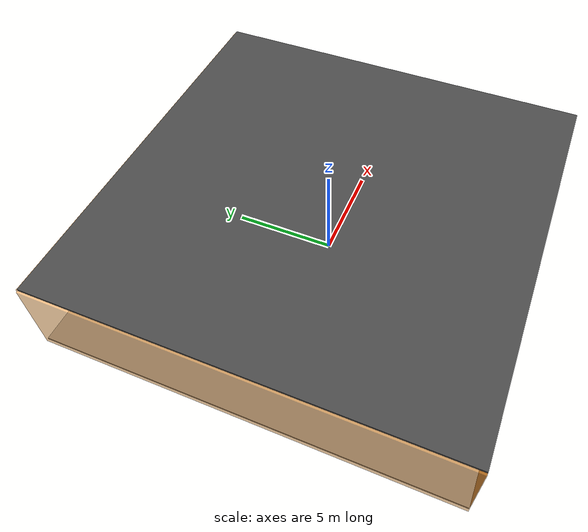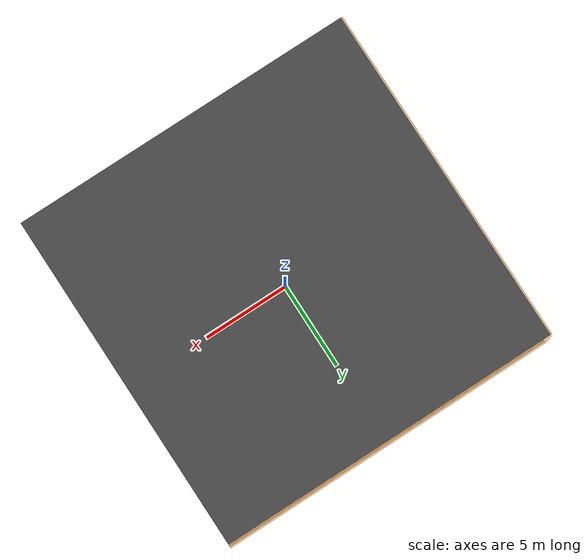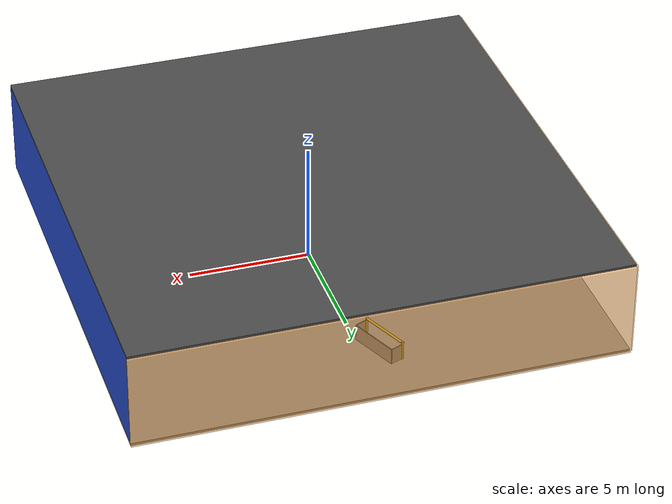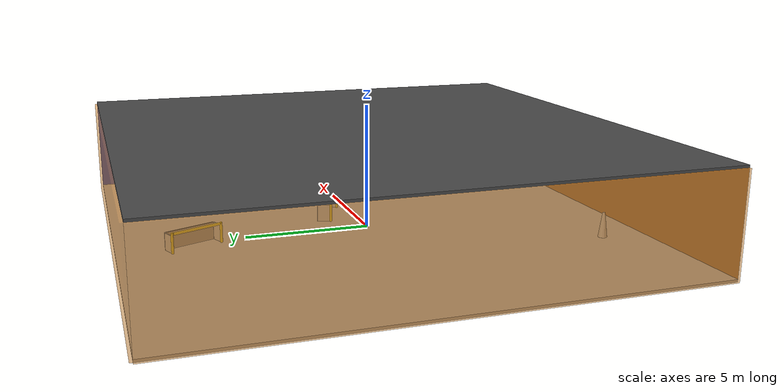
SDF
<sdf version="1.4">
 <world name="default">
  <physics type="ode">
   <max_step_size>0.001</max_step_size>
   <real_time_factor>1</real_time_factor>
   <real_time_update_rate>1000</real_time_update_rate>
   <gravity>0 0 -9.8</gravity>
  </physics>
  <scene><ambient>0.4 0.4 0.4 1</ambient><background>0.7 0.7 0.7 1</background><shadows>1</shadows></scene>
  <model name="Surrounding">
   <static>1</static>
   <link name="Ceiling">
    <collision name="Ceiling_Collision"><geometry><box><size>20 20 0.1</size></box></geometry></collision>
    <visual name="Ceiling_Visual">
     <geometry><box><size>20 20 0.1</size></box></geometry>
     <material>
      <script><uri>file://media/materials/scripts/gazebo.material</uri><name>Gazebo/Road</name></script>
     </material>
    </visual>
    <pose>0 0 4.05 0 0 0</pose>
   </link>
   <link name="Wall_South">
    <collision name="Wall_South_Collision">
     <geometry><box><size>20 0 4</size></box></geometry>
     <pose>0 0 2 0 -0 0</pose>
    </collision>
    <visual name="Wall_South_Visual">
     <pose>0 0 2 0 -0 0</pose>
     <geometry><box><size>20 0 4</size></box></geometry>
     <material>
      <script><uri>file://media/materials/scripts/gazebo.material</uri><name>Gazebo/WoodPallet</name></script>
     </material>
    </visual>
    <velocity_decay><linear>0</linear><angular>0</angular></velocity_decay>
    <pose>0 -10 0 0 -0 0</pose>
   </link>
   <link name="Wall_East">
    <collision name="Wall_21_Collision">
     <geometry><box><size>20 0 4</size></box></geometry>
     <pose>0 0 2 0 -0 0</pose>
    </collision>
    <visual name="Wall_21_Visual">
     <pose>0 0 2 0 -0 0</pose>
     <geometry><box><size>20 0 4</size></box></geometry>
     <material>
      <script><uri>file://media/materials/scripts/gazebo.material</uri><name>Gazebo/Blue</name></script>
     </material>
    </visual>
    <velocity_decay><linear>0</linear><angular>0</angular></velocity_decay>
    <pose>10 0 0 0 -0 1.5708</pose>
   </link>
   <link name="Wall_North">
    <collision name="Wall_22_Collision">
     <geometry><box><size>20 0.2 4</size></box></geometry>
     <pose>0 0 2 0 -0 0</pose>
    </collision>
    <visual name="Wall_22_Visual">
     <pose>0 0 2 0 -0 0</pose>
     <geometry><box><size>20 0.2 4</size></box></geometry>
     <material>
      <script>
       <uri>file://media/materials/scripts/gazebo.material</uri>
       <name>Gazebo/OrangeTransparent</name>
      </script>
     </material>
    </visual>
    <velocity_decay><linear>0</linear><angular>0</angular></velocity_decay>
    <pose>0 10 0 0 -0 0</pose>
   </link>
   <link name="Wall_West">
    <collision name="Wall_23_Collision">
     <geometry><box><size>20 0.2 4</size></box></geometry>
     <pose>0 0 2 0 -0 0</pose>
    </collision>
    <visual name="Wall_23_Visual">
     <pose>0 0 2 0 -0 0</pose>
     <geometry><box><size>20 0.2 4</size></box></geometry>
     <material>
      <script>
       <uri>file://media/materials/scripts/gazebo.material</uri>
       <name>Gazebo/OrangeTransparent</name>
      </script>
     </material>
    </visual>
    <velocity_decay><linear>0</linear><angular>0</angular></velocity_decay>
    <pose>-10 0 0 0 0 -1.5708</pose>
   </link>
   <link name="Ground_link">
    <collision name="collision">
     <pose>0 0 .05 0 -0 0</pose>
     <geometry><box><size>20 20 0.1</size></box></geometry>
    </collision>
    <visual name="visual">
     <pose>0 0 .05 0 -0 0</pose>
     <geometry><box><size>20 20 0.1</size></box></geometry>
     <material>
      <script><uri>file://media/materials/scripts/gazebo.material</uri><name>Gazebo/LightOff</name></script>
     </material>
    </visual>
   </link>
   <static>1</static>
  </model>
  <spherical_coordinates>
   <surface_model>EARTH_WGS84</surface_model>
   <latitude_deg>0</latitude_deg>
   <longitude_deg>0</longitude_deg>
   <elevation>0</elevation>
   <heading_deg>0</heading_deg>
  </spherical_coordinates>
  <light name="lightball_0" type="diffuse">
   <diffuse>0.8 0.8 0.8 1</diffuse>
   <specular>0.2 0.2 0.2 1</specular>
   <attenuation>
    <range>100</range>
    <constant>0.7</constant>
    <linear>0.01</linear>
    <quadratic>0.001</quadratic>
   </attenuation>
   <direction>-0.5 0.1 -0.9</direction>
   <pose>-6.57161211981 -5.16757775023 0.548988955993 0 0 0</pose>
  </light>
  <light name="lightball_1" type="diffuse">
   <diffuse>0.8 0.8 0.8 1</diffuse>
   <specular>0.2 0.2 0.2 1</specular>
   <attenuation>
    <range>100</range>
    <constant>0.7</constant>
    <linear>0.01</linear>
    <quadratic>0.001</quadratic>
   </attenuation>
   <direction>-0.5 0.1 -0.9</direction>
   <pose>6.63430705047 5.64984219134 2.20633146486 0 0 0</pose>
  </light>
  <light name="lightball_2" type="diffuse">
   <diffuse>0.8 0.8 0.8 1</diffuse>
   <specular>0.2 0.2 0.2 1</specular>
   <attenuation>
    <range>100</range>
    <constant>0.7</constant>
    <linear>0.01</linear>
    <quadratic>0.001</quadratic>
   </attenuation>
   <direction>-0.5 0.1 -0.9</direction>
   <pose>5.35909191136 7.92904218091 1.44287566967 0 0 0</pose>
  </light>
  <light name="lightball_3" type="diffuse">
   <diffuse>0.8 0.8 0.8 1</diffuse>
   <specular>0.2 0.2 0.2 1</specular>
   <attenuation>
    <range>100</range>
    <constant>0.7</constant>
    <linear>0.01</linear>
    <quadratic>0.001</quadratic>
   </attenuation>
   <direction>-0.5 0.1 -0.9</direction>
   <pose>-4.92742104635 6.16172764755 3.62825854523 0 0 0</pose>
  </light>
  <light name="lightball_4" type="diffuse">
   <diffuse>0.8 0.8 0.8 1</diffuse>
   <specular>0.2 0.2 0.2 1</specular>
   <attenuation>
    <range>100</range>
    <constant>0.7</constant>
    <linear>0.01</linear>
    <quadratic>0.001</quadratic>
   </attenuation>
   <direction>-0.5 0.1 -0.9</direction>
   <pose>-4.48273944628 -9.39004649531 1.7695632513 0 0 0</pose>
  </light>
  <light name="lightball_5" type="diffuse">
   <diffuse>0.8 0.8 0.8 1</diffuse>
   <specular>0.2 0.2 0.2 1</specular>
   <attenuation>
    <range>100</range>
    <constant>0.7</constant>
    <linear>0.01</linear>
    <quadratic>0.001</quadratic>
   </attenuation>
   <direction>-0.5 0.1 -0.9</direction>
   <pose>0.24565223462 6.58986375392 2.59800653709 0 0 0</pose>
  </light>
  <light name="lightball_6" type="diffuse">
   <diffuse>0.8 0.8 0.8 1</diffuse>
   <specular>0.2 0.2 0.2 1</specular>
   <attenuation>
    <range>100</range>
    <constant>0.7</constant>
    <linear>0.01</linear>
    <quadratic>0.001</quadratic>
   </attenuation>
   <direction>-0.5 0.1 -0.9</direction>
   <pose>9.56084082675 9.09197911273 1.10038784203 0 0 0</pose>
  </light>
  <light name="lightball_7" type="diffuse">
   <diffuse>0.8 0.8 0.8 1</diffuse>
   <specular>0.2 0.2 0.2 1</specular>
   <attenuation>
    <range>100</range>
    <constant>0.7</constant>
    <linear>0.01</linear>
    <quadratic>0.001</quadratic>
   </attenuation>
   <direction>-0.5 0.1 -0.9</direction>
   <pose>-3.56804501197 -7.91528628657 1.39549470088 0 0 0</pose>
  </light>
  <light name="lightball_8" type="diffuse">
   <diffuse>0.8 0.8 0.8 1</diffuse>
   <specular>0.2 0.2 0.2 1</specular>
   <attenuation>
    <range>100</range>
    <constant>0.7</constant>
    <linear>0.01</linear>
    <quadratic>0.001</quadratic>
   </attenuation>
   <direction>-0.5 0.1 -0.9</direction>
   <pose>-5.47381555349 7.87450773163 2.46329301392 0 0 0</pose>
  </light>
  <light name="lightball_9" type="diffuse">
   <diffuse>0.8 0.8 0.8 1</diffuse>
   <specular>0.2 0.2 0.2 1</specular>
   <attenuation>
    <range>100</range>
    <constant>0.7</constant>
    <linear>0.01</linear>
    <quadratic>0.001</quadratic>
   </attenuation>
   <direction>-0.5 0.1 -0.9</direction>
   <pose>7.72560159537 -8.69562322282 0.816211338495 0 0 0</pose>
  </light>
  <light name="lightball_10" type="diffuse">
   <diffuse>0.8 0.8 0.8 1</diffuse>
   <specular>0.2 0.2 0.2 1</specular>
   <attenuation>
    <range>100</range>
    <constant>0.7</constant>
    <linear>0.01</linear>
    <quadratic>0.001</quadratic>
   </attenuation>
   <direction>-0.5 0.1 -0.9</direction>
   <pose>5.07191684493 -3.00619087126 3.05069588451 0 0 0</pose>
  </light>
  <light name="lightball_11" type="diffuse">
   <diffuse>0.8 0.8 0.8 1</diffuse>
   <specular>0.2 0.2 0.2 1</specular>
   <attenuation>
    <range>100</range>
    <constant>0.7</constant>
    <linear>0.01</linear>
    <quadratic>0.001</quadratic>
   </attenuation>
   <direction>-0.5 0.1 -0.9</direction>
   <pose>5.65653210908 -1.62140975612 2.21111481797 0 0 0</pose>
  </light>
  <light name="lightball_12" type="diffuse">
   <diffuse>0.8 0.8 0.8 1</diffuse>
   <specular>0.2 0.2 0.2 1</specular>
   <attenuation>
    <range>100</range>
    <constant>0.7</constant>
    <linear>0.01</linear>
    <quadratic>0.001</quadratic>
   </attenuation>
   <direction>-0.5 0.1 -0.9</direction>
   <pose>2.66013136101 4.45809659062 1.74797948528 0 0 0</pose>
  </light>
  <include>
   <uri>model://construction_cone</uri>
   <pose>-4.44733932365 -8.22712408409 0 0 0 3.02055741793</pose>
  </include>
  <include>
   <uri>model://robocup_3Dsim_goal</uri>
   <pose>-0.938735085189 6.99685189038 0 0 0 0.400830573489</pose>
  </include>
  <include>
   <uri>model://robocup_3Dsim_goal</uri>
   <pose>1.81325048484 0.882519675752 0 0 0 1.17412064039</pose>
  </include>
 </world>
</sdf>

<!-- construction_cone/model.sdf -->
<sdf version="1.5">
  <model name="Construction Cone">
    <link name="link">
      <collision name="collision">
        <geometry>
          <mesh>
            <scale>10 10 10</scale>
            <uri>file://isr-testbed/construction_cone/meshes/construction_cone.dae</uri>
          </mesh>
        </geometry>
      </collision>
      <visual name="visual">
        <geometry>
          <mesh>
            <scale>10 10 10</scale>
            <uri>file://isr-testbed/construction_cone/meshes/construction_cone.dae</uri>
          </mesh>
        </geometry>
      </visual>
    </link>
  </model>
</sdf>

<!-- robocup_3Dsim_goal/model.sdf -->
<sdf version="1.5">
  <model name="robocup_3d_goal">
    <static>true</static>
    <link name="left_post">
      <pose>0 1.05 0.45 0 0 0</pose>
      <collision name="collision">
        <geometry>
          <cylinder>
            <radius>0.05</radius>
            <length>0.9</length>
          </cylinder>
        </geometry>
      </collision>
      <visual name="visual">
        <geometry>
          <cylinder>
            <radius>0.05</radius>
            <length>0.9</length>
          </cylinder>
        </geometry>
        <material>
          <script>
            <uri>file://media/materials/scripts/gazebo.material</uri>
            <name>Gazebo/ZincYellow</name>
          </script>
        </material>
      </visual>
    </link>
    <link name="left_support_horiz_lower">
      <pose>0.30 1.05 0.01 0 0 0</pose>
      <collision name="collision">
        <geometry>
          <box>
            <size>0.50 0.02 0.02</size>
          </box>
        </geometry>
      </collision>
      <visual name="visual">
        <geometry>
          <box>
            <size>0.50 0.02 0.02</size>
          </box>
        </geometry>
        <material>
          <script>
            <uri>file://media/materials/scripts/gazebo.material</uri>
            <name>Gazebo/White</name>
          </script>
        </material>
      </visual>
    </link>
    <link name="left_support_horiz_upper">
      <pose>0.30 1.05 0.79 0 0 0</pose>
      <collision name="collision">
        <geometry>
          <box>
            <size>0.50 0.02 0.02</size>
          </box>
        </geometry>
      </collision>
      <visual name="visual">
        <geometry>
          <box>
            <size>0.50 0.02 0.02</size>
          </box>
        </geometry>
        <material>
          <script>
            <uri>file://media/materials/scripts/gazebo.material</uri>
            <name>Gazebo/White</name>
          </script>
        </material>
      </visual>
    </link>
    <link name="left_support_vertical">
      <pose>0.56 1.05 0.4 0 1.5708 0</pose>
      <collision name="collision">
        <geometry>
          <box>
            <size>0.80 0.02 0.02</size>
          </box>
        </geometry>
      </collision>
      <visual name="visual">
        <geometry>
          <box>
            <size>0.80 0.02 0.02</size>
          </box>
        </geometry>
        <material>
          <script>
            <uri>file://media/materials/scripts/gazebo.material</uri>
            <name>Gazebo/White</name>
          </script>
        </material>
      </visual>
    </link>
    <link name="right_support_horiz_lower">
      <pose>0.30 -1.05 0.01 0 0 0</pose>
      <collision name="collision">
        <geometry>
          <box>
            <size>0.50 0.02 0.02</size>
          </box>
        </geometry>
      </collision>
      <visual name="visual">
        <geometry>
          <box>
            <size>0.50 0.02 0.02</size>
          </box>
        </geometry>
        <material>
          <script>
            <uri>file://media/materials/scripts/gazebo.material</uri>
            <name>Gazebo/White</name>
          </script>
        </material>
      </visual>
    </link>
    <link name="right_support_horiz_upper">
      <pose>0.30 -1.05 0.79 0 0 0</pose>
      <collision name="collision">
        <geometry>
          <box>
            <size>0.50 0.02 0.02</size>
          </box>
        </geometry>
      </collision>
      <visual name="visual">
        <geometry>
          <box>
            <size>0.50 0.02 0.02</size>
          </box>
        </geometry>
        <material>
          <script>
            <uri>file://media/materials/scripts/gazebo.material</uri>
            <name>Gazebo/White</name>
          </script>
        </material>
      </visual>
    </link>
    <link name="right_support_vertical">
      <pose>0.56 -1.05 0.4 0 1.5708 0</pose>
      <collision name="collision">
        <geometry>
          <box>
            <size>0.80 0.02 0.02</size>
          </box>
        </geometry>
      </collision>
      <visual name="visual">
        <geometry>
          <box>
            <size>0.80 0.02 0.02</size>
          </box>
        </geometry>
        <material>
          <script>
            <uri>file://media/materials/scripts/gazebo.material</uri>
            <name>Gazebo/White</name>
          </script>
        </material>
      </visual>
    </link>
    <link name="center_support_horiz_lower">
      <pose>0.56 0 0.01 0 1.5708 0</pose>
      <collision name="collision">
        <geometry>
          <box>
            <size>0.02 2.08 0.02</size>
          </box>
        </geometry>
      </collision>
      <visual name="visual">
        <geometry>
          <box>
            <size>0.02 2.08 0.02</size>
          </box>
        </geometry>
        <material>
          <script>
            <uri>file://media/materials/scripts/gazebo.material</uri>
            <name>Gazebo/White</name>
          </script>
        </material>
      </visual>
    </link>
    <link name="center_support_horiz_upper">
      <pose>0.56 0 0.79 0 1.5708 0</pose>
      <collision name="collision">
        <geometry>
          <box>
            <size>0.02 2.08 0.02</size>
          </box>
        </geometry>
      </collision>
      <visual name="visual">
        <geometry>
          <box>
            <size>0.02 2.08 0.02</size>
          </box>
        </geometry>
        <material>
          <script>
            <uri>file://media/materials/scripts/gazebo.material</uri>
            <name>Gazebo/White</name>
          </script>
        </material>
      </visual>
    </link>
    <link name="right_post">
      <pose>0 -1.05 0.45 0 0 0</pose>
      <collision name="collision">
        <geometry>
          <cylinder>
            <radius>0.05</radius>
            <length>0.9</length>
          </cylinder>
        </geometry>
      </collision>
      <visual name="visual">
        <geometry>
          <cylinder>
            <radius>0.05</radius>
            <length>0.9</length>
          </cylinder>
        </geometry>
        <material>
          <script>
            <uri>file://media/materials/scripts/gazebo.material</uri>
            <name>Gazebo/ZincYellow</name>
          </script>
        </material>
      </visual>
    </link>
    <link name="crossbar">
      <pose>0 0 0.85 1.57 1.57 0</pose>
      <collision name="collision">
        <geometry>
          <cylinder>
            <radius>0.05</radius>
            <length>2.0</length>
          </cylinder>
        </geometry>
      </collision>
      <visual name="visual">
        <geometry>
          <cylinder>
            <radius>0.05</radius>
            <length>2.0</length>
          </cylinder>
        </geometry>
        <material>
          <script>
            <uri>file://media/materials/scripts/gazebo.material</uri>
            <name>Gazebo/ZincYellow</name>
          </script>
        </material>
      </visual>
    </link>
    <link name="center_net">
      <pose>0.56 0 0.40 0 0 0</pose>
      <collision name="collision">
        <geometry>
          <box>
            <size>0.01 2.1 0.80</size>
          </box>
        </geometry>
      </collision>
      <visual name="visual">
        <geometry>
          <box>
            <size>0.01 2.1 0.80</size>
          </box>
        </geometry>
        <material>
          <script>
            <uri>model://../model_source/models/robocup09_spl_field/materials/scripts/</uri>
            <uri>model://../model_source/models/robocup09_spl_field/materials/textures/</uri>
            <name>RoboCup/Net</name>
          </script>
        </material>
      </visual>
    </link>
    <link name="left_net">
      <pose>0.30 1.05 0.40 0 0 0</pose>
      <collision name="collision">
        <geometry>
          <box>
            <size>0.50 0.01 0.76</size>
          </box>
        </geometry>
      </collision>
      <visual name="visual">
        <geometry>
          <box>
            <size>0.50 0.01 0.76</size>
          </box>
        </geometry>
        <material>
          <script>
            <uri>model://../model_source/models/robocup09_spl_field/materials/scripts/</uri>
            <uri>model://../model_source/models/robocup09_spl_field/materials/textures/</uri>
            <name>RoboCup/Net</name>
          </script>
        </material>
      </visual>
    </link>
    <link name="right_net">
      <pose>0.30 -1.05 0.40 0 0 0</pose>
      <collision name="collision">
        <geometry>
          <box>
            <size>0.50 0.01 0.76</size>
          </box>
        </geometry>
      </collision>
      <visual name="visual">
        <geometry>
          <box>
            <size>0.50 0.01 0.76</size>
          </box>
        </geometry>
        <material>
          <script>
            <uri>model://../model_source/models/robocup09_spl_field/materials/scripts/</uri>
            <uri>model://../model_source/models/robocup09_spl_field/materials/textures/</uri>
            <name>RoboCup/Net</name>
          </script>
        </material>
      </visual>
    </link>
  </model>
</sdf>
